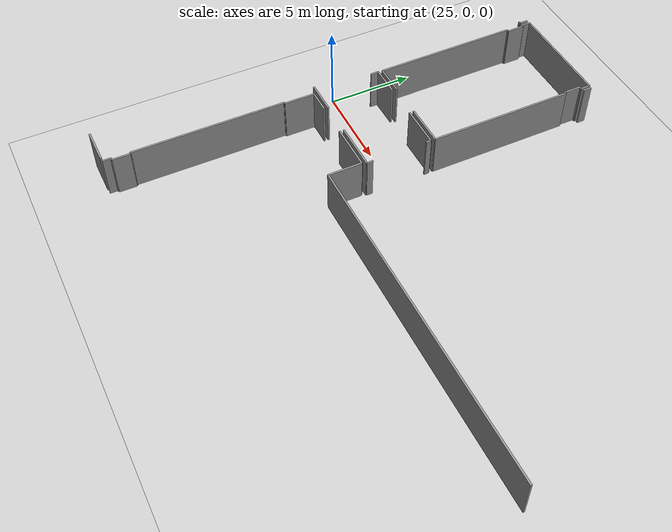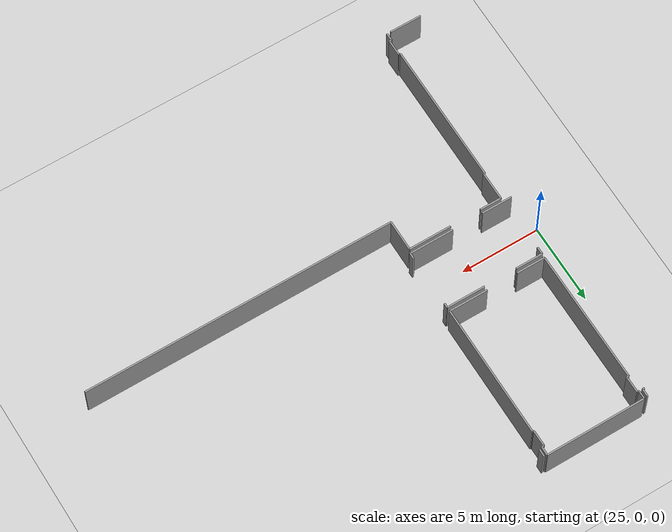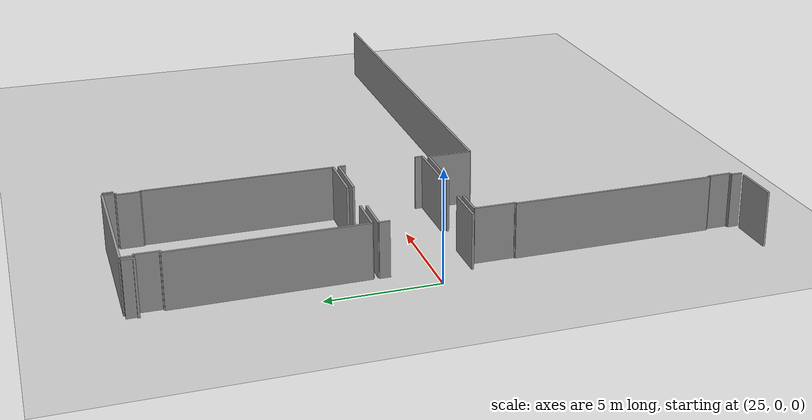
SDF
<sdf version="1.6">
 <world name="default">
  <model name="ground_plane">
   <static>1</static>
   <link name="link">
    <collision name="collision">
     <geometry><plane><normal>0 0 1</normal><size>100 100</size></plane></geometry>
     <surface><friction><ode><mu>100</mu><mu2>50</mu2></ode></friction></surface>
    </collision>
    <visual name="visual">
     <cast_shadows>0</cast_shadows>
     <geometry><plane><normal>0 0 1</normal><size>100 100</size></plane></geometry>
     <material>
      <script><uri>file://media/materials/scripts/gazebo.material</uri><name>Gazebo/Grey</name></script>
     </material>
    </visual>
   </link>
  </model>
  <model name="0510040941_A-40">
   <static>1</static>
   <link name="Wall_168">
    <collision name="Wall_168_Collision">
     <geometry><box><size>0.497041720305 0.1 2.5</size></box></geometry>
     <pose>0.248520860152 0 1.25 0 0 0</pose>
    </collision>
    <visual name="Wall_168_Visual">
     <pose>0.248520860152 0 1.25 0 0 0</pose>
     <geometry><box><size>0.497041720305 0.1 2.5</size></box></geometry>
     <material>
      <script><uri>file://media/materials/scripts/gazebo.material</uri><name>Gazebo/Grey</name></script>
      <ambient>1 1 1 1</ambient>
     </material>
    </visual>
    <pose>84.424039114 -0.0147121305321 0 0 0 -1.57079632679</pose>
   </link>
   <link name="Wall_169">
    <collision name="Wall_169_Collision">
     <geometry><box><size>0.125053109523 0.1 2.5</size></box></geometry>
     <pose>0.0625265547615 0 1.25 0 0 0</pose>
    </collision>
    <visual name="Wall_169_Visual">
     <pose>0.0625265547615 0 1.25 0 0 0</pose>
     <geometry><box><size>0.125053109523 0.1 2.5</size></box></geometry>
     <material>
      <script><uri>file://media/materials/scripts/gazebo.material</uri><name>Gazebo/Grey</name></script>
      <ambient>1 1 1 1</ambient>
     </material>
    </visual>
    <pose>84.424039114 -0.511753850837 0 0 0 3.14159265359</pose>
   </link>
   <link name="Wall_174">
    <collision name="Wall_174_Collision">
     <geometry><box><size>0.469900376047 0.1 2.5</size></box></geometry>
     <pose>0.234950188024 0 1.25 0 0 0</pose>
    </collision>
    <visual name="Wall_174_Visual">
     <pose>0.234950188024 0 1.25 0 0 0</pose>
     <geometry><box><size>0.469900376047 0.1 2.5</size></box></geometry>
     <material>
      <script><uri>file://media/materials/scripts/gazebo.material</uri><name>Gazebo/Grey</name></script>
      <ambient>1 1 1 1</ambient>
     </material>
    </visual>
    <pose>84.6516966511 -10.6997774156 0 0 0 1.57079632679</pose>
   </link>
   <link name="Wall_175">
    <collision name="Wall_175_Collision">
     <geometry><box><size>1.72461681876 0.1 2.5</size></box></geometry>
     <pose>0.862308409378 0 1.25 0 0 0</pose>
    </collision>
    <visual name="Wall_175_Visual">
     <pose>0.862308409378 0 1.25 0 0 0</pose>
     <geometry><box><size>1.72461681876 0.1 2.5</size></box></geometry>
     <material>
      <script><uri>file://media/materials/scripts/gazebo.material</uri><name>Gazebo/Grey</name></script>
      <ambient>1 1 1 1</ambient>
     </material>
    </visual>
    <pose>84.6516966511 -10.2298770396 0 0 0 0.0</pose>
   </link>
   <link name="Wall_176">
    <collision name="Wall_176_Collision">
     <geometry><box><size>2.43396980208 0.1 2.5</size></box></geometry>
     <pose>1.21698490104 0 1.25 0 0 0</pose>
    </collision>
    <visual name="Wall_176_Visual">
     <pose>1.21698490104 0 1.25 0 0 0</pose>
     <geometry><box><size>2.43396980208 0.1 2.5</size></box></geometry>
     <material>
      <script><uri>file://media/materials/scripts/gazebo.material</uri><name>Gazebo/Grey</name></script>
      <ambient>1 1 1 1</ambient>
     </material>
    </visual>
    <pose>88.465182348 -10.2298770396 0 0 0 0.0</pose>
   </link>
   <link name="Wall_177">
    <collision name="Wall_177_Collision">
     <geometry><box><size>0.290057263163 0.1 2.5</size></box></geometry>
     <pose>0.145028631582 0 1.25 0 0 0</pose>
    </collision>
    <visual name="Wall_177_Visual">
     <pose>0.145028631582 0 1.25 0 0 0</pose>
     <geometry><box><size>0.290057263163 0.1 2.5</size></box></geometry>
     <material>
      <script><uri>file://media/materials/scripts/gazebo.material</uri><name>Gazebo/Grey</name></script>
      <ambient>1 1 1 1</ambient>
     </material>
    </visual>
    <pose>90.8991521501 -10.2298770396 0 0 0 -1.57079632679</pose>
   </link>
   <link name="Wall_178">
    <collision name="Wall_178_Collision">
     <geometry><box><size>0.362603286132 0.1 2.5</size></box></geometry>
     <pose>0.181301643066 0 1.25 0 0 0</pose>
    </collision>
    <visual name="Wall_178_Visual">
     <pose>0.181301643066 0 1.25 0 0 0</pose>
     <geometry><box><size>0.362603286132 0.1 2.5</size></box></geometry>
     <material>
      <script><uri>file://media/materials/scripts/gazebo.material</uri><name>Gazebo/Grey</name></script>
      <ambient>1 1 1 1</ambient>
     </material>
    </visual>
    <pose>90.8991521501 -13.7394811437 0 0 0 -1.57079632679</pose>
   </link>
   <link name="Wall_179">
    <collision name="Wall_179_Collision">
     <geometry><box><size>2.80228038023 0.1 2.5</size></box></geometry>
     <pose>1.40114019012 0 1.25 0 0 0</pose>
    </collision>
    <visual name="Wall_179_Visual">
     <pose>1.40114019012 0 1.25 0 0 0</pose>
     <geometry><box><size>2.80228038023 0.1 2.5</size></box></geometry>
     <material>
      <script><uri>file://media/materials/scripts/gazebo.material</uri><name>Gazebo/Grey</name></script>
      <ambient>1 1 1 1</ambient>
     </material>
    </visual>
    <pose>90.8991521501 -14.1020844299 0 0 0 3.14159265359</pose>
   </link>
   <link name="Wall_180">
    <collision name="Wall_180_Collision">
     <geometry><box><size>1.9294451878 0.1 2.5</size></box></geometry>
     <pose>0.964722593901 0 1.25 0 0 0</pose>
    </collision>
    <visual name="Wall_180_Visual">
     <pose>0.964722593901 0 1.25 0 0 0</pose>
     <geometry><box><size>1.9294451878 0.1 2.5</size></box></geometry>
     <material>
      <script><uri>file://media/materials/scripts/gazebo.material</uri><name>Gazebo/Grey</name></script>
      <ambient>1 1 1 1</ambient>
     </material>
    </visual>
    <pose>86.1320413715 -14.1020844299 0 0 0 3.14159265359</pose>
   </link>
   <link name="Wall_280">
    <collision name="Wall_280_Collision">
     <geometry><box><size>2.0376300787 0.1 2.5</size></box></geometry>
     <pose>1.01881503935 0 1.25 0 0 0</pose>
    </collision>
    <visual name="Wall_280_Visual">
     <pose>1.01881503935 0 1.25 0 0 0</pose>
     <geometry><box><size>2.0376300787 0.1 2.5</size></box></geometry>
     <material>
      <script><uri>file://media/materials/scripts/gazebo.material</uri><name>Gazebo/Grey</name></script>
      <ambient>1 1 1 1</ambient>
     </material>
    </visual>
    <pose>84.4059026082 -26.6616780707 0 0 0 3.14159265359</pose>
   </link>
   <link name="Wall_286">
    <collision name="Wall_286_Collision">
     <geometry><box><size>1.80033355951 0.1 2.5</size></box></geometry>
     <pose>0.900166779756 0 1.25 0 0 0</pose>
    </collision>
    <visual name="Wall_286_Visual">
     <pose>0.900166779756 0 1.25 0 0 0</pose>
     <geometry><box><size>1.80033355951 0.1 2.5</size></box></geometry>
     <material>
      <script><uri>file://media/materials/scripts/gazebo.material</uri><name>Gazebo/Grey</name></script>
      <ambient>1 1 1 1</ambient>
     </material>
    </visual>
    <pose>84.6714819301 -9.97165378298 0 0 0 0.0</pose>
   </link>
   <link name="Wall_287">
    <collision name="Wall_287_Collision">
     <geometry><box><size>2.44665267323 0.1 2.5</size></box></geometry>
     <pose>1.22332633662 0 1.25 0 0 0</pose>
    </collision>
    <visual name="Wall_287_Visual">
     <pose>1.22332633662 0 1.25 0 0 0</pose>
     <geometry><box><size>2.44665267323 0.1 2.5</size></box></geometry>
     <material>
      <script><uri>file://media/materials/scripts/gazebo.material</uri><name>Gazebo/Grey</name></script>
      <ambient>1 1 1 1</ambient>
     </material>
    </visual>
    <pose>88.4524994768 -9.97165378298 0 0 0 0.0</pose>
   </link>
   <link name="Wall_288">
    <collision name="Wall_288_Collision">
     <geometry><box><size>8.41724109504 0.1 2.5</size></box></geometry>
     <pose>4.20862054752 0 1.25 0 0 0</pose>
    </collision>
    <visual name="Wall_288_Visual">
     <pose>4.20862054752 0 1.25 0 0 0</pose>
     <geometry><box><size>8.41724109504 0.1 2.5</size></box></geometry>
     <material>
      <script><uri>file://media/materials/scripts/gazebo.material</uri><name>Gazebo/Grey</name></script>
      <ambient>1 1 1 1</ambient>
     </material>
    </visual>
    <pose>90.8991521501 -9.97165378298 0 0 0 1.57079632679</pose>
   </link>
   <link name="Wall_289">
    <collision name="Wall_289_Collision">
     <geometry><box><size>0.0838337782907 0.1 2.5</size></box></geometry>
     <pose>0.0419168891454 0 1.25 0 0 0</pose>
    </collision>
    <visual name="Wall_289_Visual">
     <pose>0.0419168891454 0 1.25 0 0 0</pose>
     <geometry><box><size>0.0838337782907 0.1 2.5</size></box></geometry>
     <material>
      <script><uri>file://media/materials/scripts/gazebo.material</uri><name>Gazebo/Grey</name></script>
      <ambient>1 1 1 1</ambient>
     </material>
    </visual>
    <pose>90.8991521501 -1.55441268794 0 0 0 3.14159265359</pose>
   </link>
   <link name="Wall_290">
    <collision name="Wall_290_Collision">
     <geometry><box><size>1.0061321682 0.1 2.5</size></box></geometry>
     <pose>0.5030660841 0 1.25 0 0 0</pose>
    </collision>
    <visual name="Wall_290_Visual">
     <pose>0.5030660841 0 1.25 0 0 0</pose>
     <geometry><box><size>1.0061321682 0.1 2.5</size></box></geometry>
     <material>
      <script><uri>file://media/materials/scripts/gazebo.material</uri><name>Gazebo/Grey</name></script>
      <ambient>1 1 1 1</ambient>
     </material>
    </visual>
    <pose>90.8153183718 -1.55441268794 0 0 0 1.57079632679</pose>
   </link>
   <link name="Wall_291">
    <collision name="Wall_291_Collision">
     <geometry><box><size>0.143062786554 0.1 2.5</size></box></geometry>
     <pose>0.0715313932768 0 1.25 0 0 0</pose>
    </collision>
    <visual name="Wall_291_Visual">
     <pose>0.0715313932768 0 1.25 0 0 0</pose>
     <geometry><box><size>0.143062786554 0.1 2.5</size></box></geometry>
     <material>
      <script><uri>file://media/materials/scripts/gazebo.material</uri><name>Gazebo/Grey</name></script>
      <ambient>1 1 1 1</ambient>
     </material>
    </visual>
    <pose>90.8153183718 -0.548280519744 0 0 0 0.0</pose>
   </link>
   <link name="Wall_292">
    <collision name="Wall_292_Collision">
     <geometry><box><size>0.548280519744 0.1 2.5</size></box></geometry>
     <pose>0.274140259872 0 1.25 0 0 0</pose>
    </collision>
    <visual name="Wall_292_Visual">
     <pose>0.274140259872 0 1.25 0 0 0</pose>
     <geometry><box><size>0.548280519744 0.1 2.5</size></box></geometry>
     <material>
      <script><uri>file://media/materials/scripts/gazebo.material</uri><name>Gazebo/Grey</name></script>
      <ambient>1 1 1 1</ambient>
     </material>
    </visual>
    <pose>90.9583811583 -0.548280519744 0 0 0 1.57079632679</pose>
   </link>
   <link name="Wall_293">
    <collision name="Wall_293_Collision">
     <geometry><box><size>6.30795279435 0.1 2.5</size></box></geometry>
     <pose>3.15397639718 0 1.25 0 0 0</pose>
    </collision>
    <visual name="Wall_293_Visual">
     <pose>3.15397639718 0 1.25 0 0 0</pose>
     <geometry><box><size>6.30795279435 0.1 2.5</size></box></geometry>
     <material>
      <script><uri>file://media/materials/scripts/gazebo.material</uri><name>Gazebo/Grey</name></script>
      <ambient>1 1 1 1</ambient>
     </material>
    </visual>
    <pose>90.9583811583 -0.0 0 0 0 3.14159265359</pose>
   </link>
   <link name="Wall_294">
    <collision name="Wall_294_Collision">
     <geometry><box><size>0.51974405966 0.1 2.5</size></box></geometry>
     <pose>0.25987202983 0 1.25 0 0 0</pose>
    </collision>
    <visual name="Wall_294_Visual">
     <pose>0.25987202983 0 1.25 0 0 0</pose>
     <geometry><box><size>0.51974405966 0.1 2.5</size></box></geometry>
     <material>
      <script><uri>file://media/materials/scripts/gazebo.material</uri><name>Gazebo/Grey</name></script>
      <ambient>1 1 1 1</ambient>
     </material>
    </visual>
    <pose>84.650428364 -0.0 0 0 0 -1.57079632679</pose>
   </link>
   <link name="Wall_295">
    <collision name="Wall_295_Collision">
     <geometry><box><size>0.114399497758 0.1 2.5</size></box></geometry>
     <pose>0.0571997488791 0 1.25 0 0 0</pose>
    </collision>
    <visual name="Wall_295_Visual">
     <pose>0.0571997488791 0 1.25 0 0 0</pose>
     <geometry><box><size>0.114399497758 0.1 2.5</size></box></geometry>
     <material>
      <script><uri>file://media/materials/scripts/gazebo.material</uri><name>Gazebo/Grey</name></script>
      <ambient>1 1 1 1</ambient>
     </material>
    </visual>
    <pose>84.650428364 -0.51974405966 0 0 0 0.0</pose>
   </link>
   <link name="Wall_296">
    <collision name="Wall_296_Collision">
     <geometry><box><size>1.02984913725 0.1 2.5</size></box></geometry>
     <pose>0.514924568624 0 1.25 0 0 0</pose>
    </collision>
    <visual name="Wall_296_Visual">
     <pose>0.514924568624 0 1.25 0 0 0</pose>
     <geometry><box><size>1.02984913725 0.1 2.5</size></box></geometry>
     <material>
      <script><uri>file://media/materials/scripts/gazebo.material</uri><name>Gazebo/Grey</name></script>
      <ambient>1 1 1 1</ambient>
     </material>
    </visual>
    <pose>84.7648278617 -0.51974405966 0 0 0 -1.57079632679</pose>
   </link>
   <link name="Wall_297">
    <collision name="Wall_297_Collision">
     <geometry><box><size>0.12391165112 0.1 2.5</size></box></geometry>
     <pose>0.0619558255598 0 1.25 0 0 0</pose>
    </collision>
    <visual name="Wall_297_Visual">
     <pose>0.0619558255598 0 1.25 0 0 0</pose>
     <geometry><box><size>0.12391165112 0.1 2.5</size></box></geometry>
     <material>
      <script><uri>file://media/materials/scripts/gazebo.material</uri><name>Gazebo/Grey</name></script>
      <ambient>1 1 1 1</ambient>
     </material>
    </visual>
    <pose>84.7648278617 -1.54959319691 0 0 0 3.14159265359</pose>
   </link>
   <link name="Wall_298">
    <collision name="Wall_298_Collision">
     <geometry><box><size>8.42211605113 0.1 2.5</size></box></geometry>
     <pose>4.21105802557 0 1.25 0 0 0</pose>
    </collision>
    <visual name="Wall_298_Visual">
     <pose>4.21105802557 0 1.25 0 0 0</pose>
     <geometry><box><size>8.42211605113 0.1 2.5</size></box></geometry>
     <material>
      <script><uri>file://media/materials/scripts/gazebo.material</uri><name>Gazebo/Grey</name></script>
      <ambient>1 1 1 1</ambient>
     </material>
    </visual>
    <pose>84.6409162106 -1.54959319691 0 0 0 -1.56716709794</pose>
   </link>
   <link name="Wall_299">
    <collision name="Wall_299_Collision">
     <geometry><box><size>8.98505323635 0.1 2.5</size></box></geometry>
     <pose>4.49252661818 0 1.25 0 0 0</pose>
    </collision>
    <visual name="Wall_299_Visual">
     <pose>4.49252661818 0 1.25 0 0 0</pose>
     <geometry><box><size>8.98505323635 0.1 2.5</size></box></geometry>
     <material>
      <script><uri>file://media/materials/scripts/gazebo.material</uri><name>Gazebo/Grey</name></script>
      <ambient>1 1 1 1</ambient>
     </material>
    </visual>
    <pose>84.6708477865 -25.1327579537 0 0 0 1.57079632679</pose>
   </link>
   <link name="Wall_300">
    <collision name="Wall_300_Collision">
     <geometry><box><size>0.0783801436969 0.1 2.5</size></box></geometry>
     <pose>0.0391900718485 0 1.25 0 0 0</pose>
    </collision>
    <visual name="Wall_300_Visual">
     <pose>0.0391900718485 0 1.25 0 0 0</pose>
     <geometry><box><size>0.0783801436969 0.1 2.5</size></box></geometry>
     <material>
      <script><uri>file://media/materials/scripts/gazebo.material</uri><name>Gazebo/Grey</name></script>
      <ambient>1 1 1 1</ambient>
     </material>
    </visual>
    <pose>84.6708477865 -16.1477047174 0 0 0 0.0</pose>
   </link>
   <link name="Wall_301">
    <collision name="Wall_301_Collision">
     <geometry><box><size>1.80033355951 0.1 2.5</size></box></geometry>
     <pose>0.900166779756 0 1.25 0 0 0</pose>
    </collision>
    <visual name="Wall_301_Visual">
     <pose>0.900166779756 0 1.25 0 0 0</pose>
     <geometry><box><size>1.80033355951 0.1 2.5</size></box></geometry>
     <material>
      <script><uri>file://media/materials/scripts/gazebo.material</uri><name>Gazebo/Grey</name></script>
      <ambient>1 1 1 1</ambient>
     </material>
    </visual>
    <pose>84.7492279302 -16.1477047174 0 0 0 1.57079632679</pose>
   </link>
   <link name="Wall_302">
    <collision name="Wall_302_Collision">
     <geometry><box><size>1.3639159633 0.1 2.5</size></box></geometry>
     <pose>0.681957981648 0 1.25 0 0 0</pose>
    </collision>
    <visual name="Wall_302_Visual">
     <pose>0.681957981648 0 1.25 0 0 0</pose>
     <geometry><box><size>1.3639159633 0.1 2.5</size></box></geometry>
     <material>
      <script><uri>file://media/materials/scripts/gazebo.material</uri><name>Gazebo/Grey</name></script>
      <ambient>1 1 1 1</ambient>
     </material>
    </visual>
    <pose>84.7492279302 -14.3473711579 0 0 0 0.0</pose>
   </link>
   <link name="Wall_303">
    <collision name="Wall_303_Collision">
     <geometry><box><size>2.69967595264 0.1 2.5</size></box></geometry>
     <pose>1.34983797632 0 1.25 0 0 0</pose>
    </collision>
    <visual name="Wall_303_Visual">
     <pose>1.34983797632 0 1.25 0 0 0</pose>
     <geometry><box><size>2.69967595264 0.1 2.5</size></box></geometry>
     <material>
      <script><uri>file://media/materials/scripts/gazebo.material</uri><name>Gazebo/Grey</name></script>
      <ambient>1 1 1 1</ambient>
     </material>
    </visual>
    <pose>88.0896425333 -14.3473711579 0 0 0 0.0</pose>
   </link>
   <link name="Wall_304">
    <collision name="Wall_304_Collision">
     <geometry><box><size>1.96711331511 0.1 2.5</size></box></geometry>
     <pose>0.983556657556 0 1.25 0 0 0</pose>
    </collision>
    <visual name="Wall_304_Visual">
     <pose>0.983556657556 0 1.25 0 0 0</pose>
     <geometry><box><size>1.96711331511 0.1 2.5</size></box></geometry>
     <material>
      <script><uri>file://media/materials/scripts/gazebo.material</uri><name>Gazebo/Grey</name></script>
      <ambient>1 1 1 1</ambient>
     </material>
    </visual>
    <pose>90.7893184859 -14.3473711579 0 0 0 -1.57079632679</pose>
   </link>
   <link name="Wall_305">
    <collision name="Wall_305_Collision">
     <geometry><box><size>19.6597185671 0.1 2.5</size></box></geometry>
     <pose>9.82985928354 0 1.25 0 0 0</pose>
    </collision>
    <visual name="Wall_305_Visual">
     <pose>9.82985928354 0 1.25 0 0 0</pose>
     <geometry><box><size>19.6597185671 0.1 2.5</size></box></geometry>
     <material>
      <script><uri>file://media/materials/scripts/gazebo.material</uri><name>Gazebo/Grey</name></script>
      <ambient>1 1 1 1</ambient>
     </material>
    </visual>
    <pose>90.7893184859 -16.314484473 0 0 0 0.0</pose>
   </link>
   <link name="Wall_313">
    <collision name="Wall_313_Collision">
     <geometry><box><size>0.48638810854 0.1 2.5</size></box></geometry>
     <pose>0.24319405427 0 1.25 0 0 0</pose>
    </collision>
    <visual name="Wall_313_Visual">
     <pose>0.24319405427 0 1.25 0 0 0</pose>
     <geometry><box><size>0.48638810854 0.1 2.5</size></box></geometry>
     <material>
      <script><uri>file://media/materials/scripts/gazebo.material</uri><name>Gazebo/Grey</name></script>
      <ambient>1 1 1 1</ambient>
     </material>
    </visual>
    <pose>84.6360967196 -26.667258534 0 0 0 1.57079632679</pose>
   </link>
   <link name="Wall_314">
    <collision name="Wall_314_Collision">
     <geometry><box><size>0.133550633192 0.1 2.5</size></box></geometry>
     <pose>0.0667753165962 0 1.25 0 0 0</pose>
    </collision>
    <visual name="Wall_314_Visual">
     <pose>0.0667753165962 0 1.25 0 0 0</pose>
     <geometry><box><size>0.133550633192 0.1 2.5</size></box></geometry>
     <material>
      <script><uri>file://media/materials/scripts/gazebo.material</uri><name>Gazebo/Grey</name></script>
      <ambient>1 1 1 1</ambient>
     </material>
    </visual>
    <pose>84.6360967196 -26.1808704254 0 0 0 0.0</pose>
   </link>
   <link name="Wall_315">
    <collision name="Wall_315_Collision">
     <geometry><box><size>1.0270589056 0.1 2.5</size></box></geometry>
     <pose>0.513529452798 0 1.25 0 0 0</pose>
    </collision>
    <visual name="Wall_315_Visual">
     <pose>0.513529452798 0 1.25 0 0 0</pose>
     <geometry><box><size>1.0270589056 0.1 2.5</size></box></geometry>
     <material>
      <script><uri>file://media/materials/scripts/gazebo.material</uri><name>Gazebo/Grey</name></script>
      <ambient>1 1 1 1</ambient>
     </material>
    </visual>
    <pose>84.7696473528 -26.1808704254 0 0 0 1.57079632679</pose>
   </link>
   <link name="Wall_316">
    <collision name="Wall_316_Collision">
     <geometry><box><size>0.101017854541 0.1 2.5</size></box></geometry>
     <pose>0.0505089272707 0 1.25 0 0 0</pose>
    </collision>
    <visual name="Wall_316_Visual">
     <pose>0.0505089272707 0 1.25 0 0 0</pose>
     <geometry><box><size>0.101017854541 0.1 2.5</size></box></geometry>
     <material>
      <script><uri>file://media/materials/scripts/gazebo.material</uri><name>Gazebo/Grey</name></script>
      <ambient>1 1 1 1</ambient>
     </material>
    </visual>
    <pose>84.7696473528 -25.1538115199 0 0 0 2.93163927077</pose>
   </link>
   <link name="Wall_333">
    <collision name="Wall_333_Collision">
     <geometry><box><size>0.466983315683 0.1 2.5</size></box></geometry>
     <pose>0.233491657842 0 1.25 0 0 0</pose>
    </collision>
    <visual name="Wall_333_Visual">
     <pose>0.233491657842 0 1.25 0 0 0</pose>
     <geometry><box><size>0.466983315683 0.1 2.5</size></box></geometry>
     <material>
      <script><uri>file://media/materials/scripts/gazebo.material</uri><name>Gazebo/Grey</name></script>
      <ambient>1 1 1 1</ambient>
     </material>
    </visual>
    <pose>91.1370828128 -0.486768594674 0 0 0 1.57079632679</pose>
   </link>
   <pose>-58.35 12.5394713145 0 0 0 0</pose>
  </model>
 </world>
</sdf>
